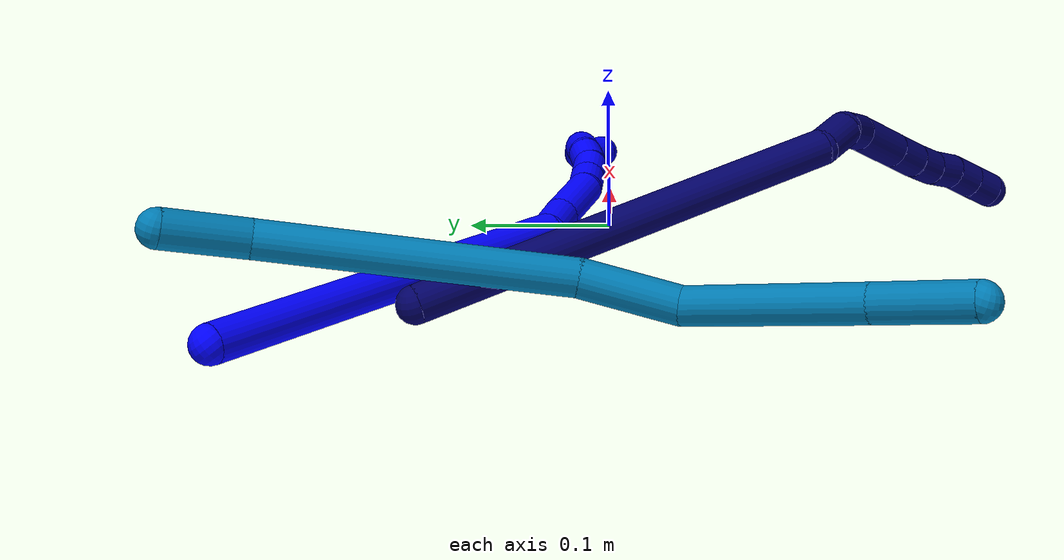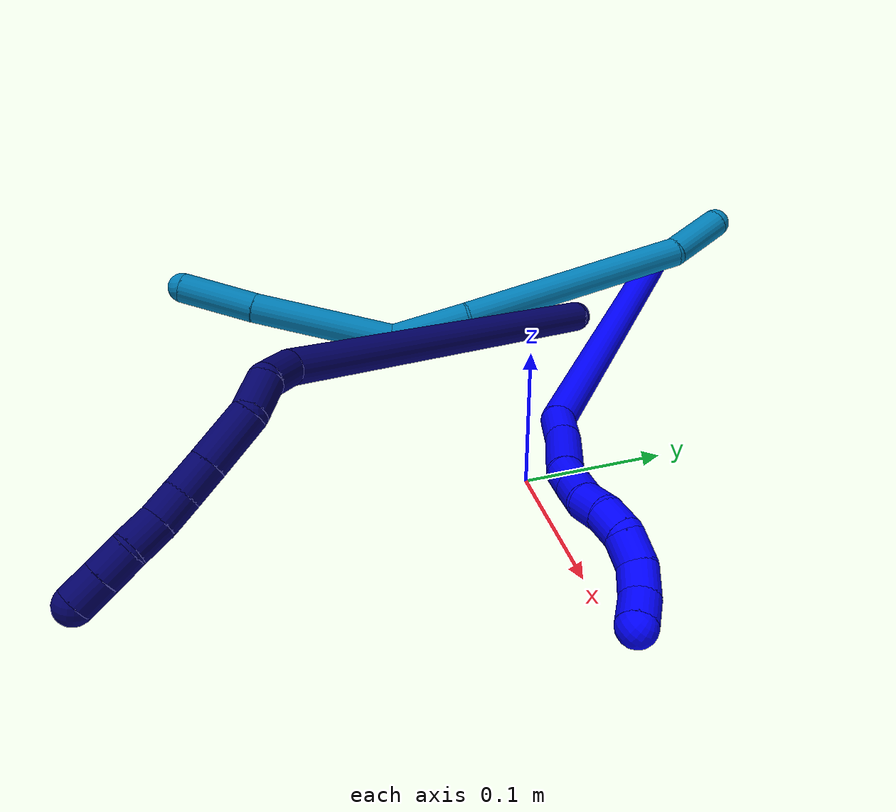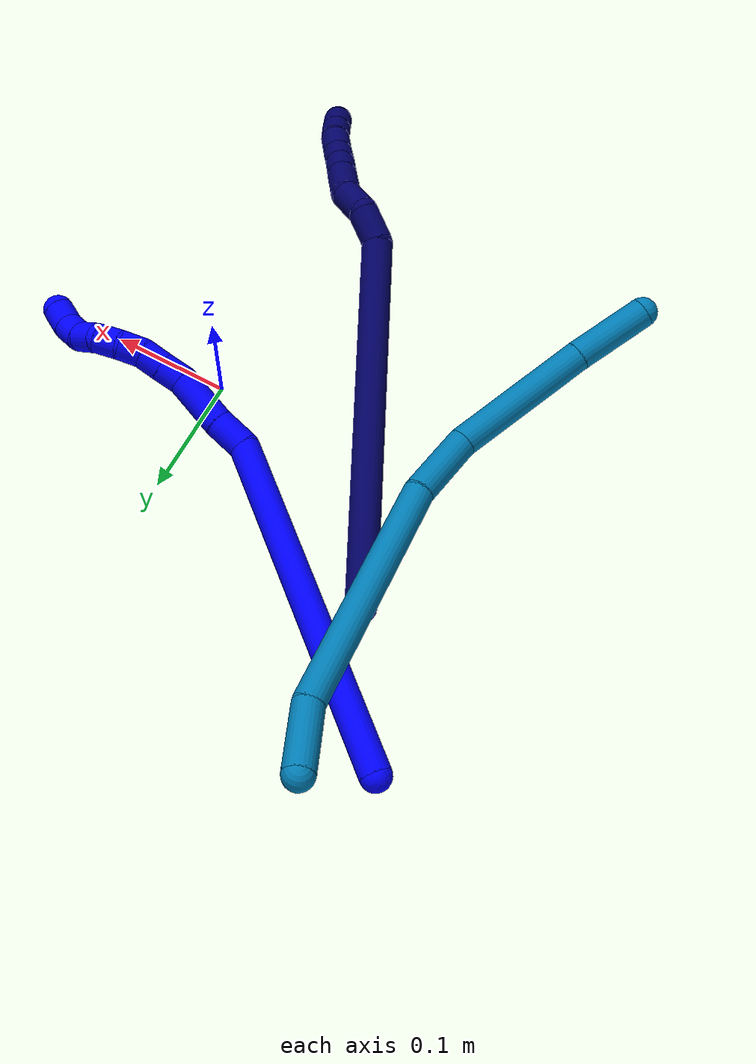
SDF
<sdf version="1.7">
 <world name="default">
  <model name="1">
   <static>0</static>
   <link name="1">
    <collision name="collision-cylinder-e_1_1_4">
     <pose>0.107219 -0.080087 -0.046219 2.09421 0.85914 1.34126</pose>
     <geometry><cylinder><radius>0.0125</radius><length>0.283168</length></cylinder></geometry>
     <surface>
      <friction><ode><mu>1.16</mu><mu2>1.16</mu2><slip1>0</slip1><slip2>0</slip2></ode></friction>
      <contact><ode><kp>1e+06</kp><kd>1</kd><max_vel>0</max_vel><min_depth>0.001</min_depth></ode></contact>
     </surface>
    </collision>
    <visual name="visual-cylinder-e_1_1_4">
     <pose>0.107219 -0.080087 -0.046219 2.09421 0.85914 1.34126</pose>
     <geometry><cylinder><radius>0.0125</radius><length>0.283168</length></cylinder></geometry>
     <material><ambient>0 0 1 1</ambient></material>
    </visual>
    <collision name="collision-cylinder-e_2_4_5">
     <pose>0.228446 -0.164963 -0.092444 1.57216 1.24144 1.24273</pose>
     <geometry><cylinder><radius>0.0125</radius><length>0.029607</length></cylinder></geometry>
     <surface>
      <friction><ode><mu>1.16</mu><mu2>1.16</mu2><slip1>0</slip1><slip2>0</slip2></ode></friction>
      <contact><ode><kp>1e+06</kp><kd>1</kd><max_vel>0</max_vel><min_depth>0.001</min_depth></ode></contact>
     </surface>
    </collision>
    <visual name="visual-cylinder-e_2_4_5">
     <pose>0.228446 -0.164963 -0.092444 1.57216 1.24144 1.24273</pose>
     <geometry><cylinder><radius>0.0125</radius><length>0.029607</length></cylinder></geometry>
     <material><ambient>0 0 1 1</ambient></material>
    </visual>
    <collision name="collision-cylinder-e_3_5_6">
     <pose>0.263669 -0.179963 -0.092719 1.59712 1.12204 1.14589</pose>
     <geometry><cylinder><radius>0.0125</radius><length>0.047092</length></cylinder></geometry>
     <surface>
      <friction><ode><mu>1.16</mu><mu2>1.16</mu2><slip1>0</slip1><slip2>0</slip2></ode></friction>
      <contact><ode><kp>1e+06</kp><kd>1</kd><max_vel>0</max_vel><min_depth>0.001</min_depth></ode></contact>
     </surface>
    </collision>
    <visual name="visual-cylinder-e_3_5_6">
     <pose>0.263669 -0.179963 -0.092719 1.59712 1.12204 1.14589</pose>
     <geometry><cylinder><radius>0.0125</radius><length>0.047092</length></cylinder></geometry>
     <material><ambient>0 0 1 1</ambient></material>
    </visual>
    <collision name="collision-cylinder-e_4_6_7">
     <pose>0.294527 -0.19232 -0.091417 0.938752 1.30176 0.73722</pose>
     <geometry><cylinder><radius>0.0125</radius><length>0.020007</length></cylinder></geometry>
     <surface>
      <friction><ode><mu>1.16</mu><mu2>1.16</mu2><slip1>0</slip1><slip2>0</slip2></ode></friction>
      <contact><ode><kp>1e+06</kp><kd>1</kd><max_vel>0</max_vel><min_depth>0.001</min_depth></ode></contact>
     </surface>
    </collision>
    <visual name="visual-cylinder-e_4_6_7">
     <pose>0.294527 -0.19232 -0.091417 0.938752 1.30176 0.73722</pose>
     <geometry><cylinder><radius>0.0125</radius><length>0.020007</length></cylinder></geometry>
     <material><ambient>0 0 1 1</ambient></material>
    </visual>
    <collision name="collision-cylinder-e_5_7_8">
     <pose>0.313633 -0.197028 -0.087871 0.914163 1.24128 0.676179</pose>
     <geometry><cylinder><radius>0.0125</radius><length>0.020001</length></cylinder></geometry>
     <surface>
      <friction><ode><mu>1.16</mu><mu2>1.16</mu2><slip1>0</slip1><slip2>0</slip2></ode></friction>
      <contact><ode><kp>1e+06</kp><kd>1</kd><max_vel>0</max_vel><min_depth>0.001</min_depth></ode></contact>
     </surface>
    </collision>
    <visual name="visual-cylinder-e_5_7_8">
     <pose>0.313633 -0.197028 -0.087871 0.914163 1.24128 0.676179</pose>
     <geometry><cylinder><radius>0.0125</radius><length>0.020001</length></cylinder></geometry>
     <material><ambient>0 0 1 1</ambient></material>
    </visual>
    <collision name="collision-cylinder-e_6_8_9">
     <pose>0.332441 -0.19974 -0.082295 0.041125 1.20285 0.028223</pose>
     <geometry><cylinder><radius>0.0125</radius><length>0.020032</length></cylinder></geometry>
     <surface>
      <friction><ode><mu>1.16</mu><mu2>1.16</mu2><slip1>0</slip1><slip2>0</slip2></ode></friction>
      <contact><ode><kp>1e+06</kp><kd>1</kd><max_vel>0</max_vel><min_depth>0.001</min_depth></ode></contact>
     </surface>
    </collision>
    <visual name="visual-cylinder-e_6_8_9">
     <pose>0.332441 -0.19974 -0.082295 0.041125 1.20285 0.028223</pose>
     <geometry><cylinder><radius>0.0125</radius><length>0.020032</length></cylinder></geometry>
     <material><ambient>0 0 1 1</ambient></material>
    </visual>
    <collision name="collision-cylinder-e_7_9_10">
     <pose>0.351657 -0.199082 -0.077279 -0.517082 1.40718 -0.441449</pose>
     <geometry><cylinder><radius>0.0125</radius><length>0.020006</length></cylinder></geometry>
     <surface>
      <friction><ode><mu>1.16</mu><mu2>1.16</mu2><slip1>0</slip1><slip2>0</slip2></ode></friction>
      <contact><ode><kp>1e+06</kp><kd>1</kd><max_vel>0</max_vel><min_depth>0.001</min_depth></ode></contact>
     </surface>
    </collision>
    <visual name="visual-cylinder-e_7_9_10">
     <pose>0.351657 -0.199082 -0.077279 -0.517082 1.40718 -0.441449</pose>
     <geometry><cylinder><radius>0.0125</radius><length>0.020006</length></cylinder></geometry>
     <material><ambient>0 0 1 1</ambient></material>
    </visual>
    <collision name="collision-cylinder-e_8_10_11">
     <pose>0.370722 -0.195484 -0.078632 -2.35196 1.16668 -2.01521</pose>
     <geometry><cylinder><radius>0.0125</radius><length>0.020003</length></cylinder></geometry>
     <surface>
      <friction><ode><mu>1.16</mu><mu2>1.16</mu2><slip1>0</slip1><slip2>0</slip2></ode></friction>
      <contact><ode><kp>1e+06</kp><kd>1</kd><max_vel>0</max_vel><min_depth>0.001</min_depth></ode></contact>
     </surface>
    </collision>
    <visual name="visual-cylinder-e_8_10_11">
     <pose>0.370722 -0.195484 -0.078632 -2.35196 1.16668 -2.01521</pose>
     <geometry><cylinder><radius>0.0125</radius><length>0.020003</length></cylinder></geometry>
     <material><ambient>0 0 1 1</ambient></material>
    </visual>
    <collision name="collision-cylinder-e_9_11_12">
     <pose>0.389088 -0.193902 -0.085246 2.83671 1.15661 2.67929</pose>
     <geometry><cylinder><radius>0.0125</radius><length>0.020034</length></cylinder></geometry>
     <surface>
      <friction><ode><mu>1.16</mu><mu2>1.16</mu2><slip1>0</slip1><slip2>0</slip2></ode></friction>
      <contact><ode><kp>1e+06</kp><kd>1</kd><max_vel>0</max_vel><min_depth>0.001</min_depth></ode></contact>
     </surface>
    </collision>
    <visual name="visual-cylinder-e_9_11_12">
     <pose>0.389088 -0.193902 -0.085246 2.83671 1.15661 2.67929</pose>
     <geometry><cylinder><radius>0.0125</radius><length>0.020034</length></cylinder></geometry>
     <material><ambient>0 0 1 1</ambient></material>
    </visual>
    <collision name="collision-cylinder-e_10_12_2">
     <pose>0.406866 -0.199441 -0.091856 2.13908 1.03283 1.60642</pose>
     <geometry><cylinder><radius>0.0125</radius><length>0.020048</length></cylinder></geometry>
     <surface>
      <friction><ode><mu>1.16</mu><mu2>1.16</mu2><slip1>0</slip1><slip2>0</slip2></ode></friction>
      <contact><ode><kp>1e+06</kp><kd>1</kd><max_vel>0</max_vel><min_depth>0.001</min_depth></ode></contact>
     </surface>
    </collision>
    <visual name="visual-cylinder-e_10_12_2">
     <pose>0.406866 -0.199441 -0.091856 2.13908 1.03283 1.60642</pose>
     <geometry><cylinder><radius>0.0125</radius><length>0.020048</length></cylinder></geometry>
     <material><ambient>0 0 1 1</ambient></material>
    </visual>
    <collision name="collision-sphere-2">
     <pose>0.415475 -0.20377 -0.09462 0 -0 0</pose>
     <geometry><sphere><radius>0.0125</radius></sphere></geometry>
     <surface>
      <friction><ode><mu>1.16</mu><mu2>1.16</mu2><slip1>0</slip1><slip2>0</slip2></ode></friction>
      <contact><ode><kp>1e+06</kp><kd>1</kd><max_vel>0</max_vel><min_depth>0.001</min_depth></ode></contact>
     </surface>
    </collision>
    <visual name="visual-sphere-2">
     <pose>0.415475 -0.20377 -0.09462 0 -0 0</pose>
     <geometry><sphere><radius>0.0125</radius></sphere></geometry>
     <material><ambient>0 0 1 1</ambient></material>
    </visual>
    <collision name="collision-sphere-12">
     <pose>0.398258 -0.195112 -0.089092 0 -0 0</pose>
     <geometry><sphere><radius>0.0125</radius></sphere></geometry>
     <surface>
      <friction><ode><mu>1.16</mu><mu2>1.16</mu2><slip1>0</slip1><slip2>0</slip2></ode></friction>
      <contact><ode><kp>1e+06</kp><kd>1</kd><max_vel>0</max_vel><min_depth>0.001</min_depth></ode></contact>
     </surface>
    </collision>
    <visual name="visual-sphere-12">
     <pose>0.398258 -0.195112 -0.089092 0 -0 0</pose>
     <geometry><sphere><radius>0.0125</radius></sphere></geometry>
     <material><ambient>0 0 1 1</ambient></material>
    </visual>
    <collision name="collision-sphere-11">
     <pose>0.379918 -0.192692 -0.081401 0 -0 0</pose>
     <geometry><sphere><radius>0.0125</radius></sphere></geometry>
     <surface>
      <friction><ode><mu>1.16</mu><mu2>1.16</mu2><slip1>0</slip1><slip2>0</slip2></ode></friction>
      <contact><ode><kp>1e+06</kp><kd>1</kd><max_vel>0</max_vel><min_depth>0.001</min_depth></ode></contact>
     </surface>
    </collision>
    <visual name="visual-sphere-11">
     <pose>0.379918 -0.192692 -0.081401 0 -0 0</pose>
     <geometry><sphere><radius>0.0125</radius></sphere></geometry>
     <material><ambient>0 0 1 1</ambient></material>
    </visual>
    <collision name="collision-sphere-10">
     <pose>0.361526 -0.198277 -0.075863 0 -0 0</pose>
     <geometry><sphere><radius>0.0125</radius></sphere></geometry>
     <surface>
      <friction><ode><mu>1.16</mu><mu2>1.16</mu2><slip1>0</slip1><slip2>0</slip2></ode></friction>
      <contact><ode><kp>1e+06</kp><kd>1</kd><max_vel>0</max_vel><min_depth>0.001</min_depth></ode></contact>
     </surface>
    </collision>
    <visual name="visual-sphere-10">
     <pose>0.361526 -0.198277 -0.075863 0 -0 0</pose>
     <geometry><sphere><radius>0.0125</radius></sphere></geometry>
     <material><ambient>0 0 1 1</ambient></material>
    </visual>
    <collision name="collision-sphere-9">
     <pose>0.341787 -0.199888 -0.078696 0 -0 0</pose>
     <geometry><sphere><radius>0.0125</radius></sphere></geometry>
     <surface>
      <friction><ode><mu>1.16</mu><mu2>1.16</mu2><slip1>0</slip1><slip2>0</slip2></ode></friction>
      <contact><ode><kp>1e+06</kp><kd>1</kd><max_vel>0</max_vel><min_depth>0.001</min_depth></ode></contact>
     </surface>
    </collision>
    <visual name="visual-sphere-9">
     <pose>0.341787 -0.199888 -0.078696 0 -0 0</pose>
     <geometry><sphere><radius>0.0125</radius></sphere></geometry>
     <material><ambient>0 0 1 1</ambient></material>
    </visual>
    <collision name="collision-sphere-4">
     <pose>0.214438 -0.160175 -0.092437 0 -0 0</pose>
     <geometry><sphere><radius>0.0125</radius></sphere></geometry>
     <surface>
      <friction><ode><mu>1.16</mu><mu2>1.16</mu2><slip1>0</slip1><slip2>0</slip2></ode></friction>
      <contact><ode><kp>1e+06</kp><kd>1</kd><max_vel>0</max_vel><min_depth>0.001</min_depth></ode></contact>
     </surface>
    </collision>
    <visual name="visual-sphere-4">
     <pose>0.214438 -0.160175 -0.092437 0 -0 0</pose>
     <geometry><sphere><radius>0.0125</radius></sphere></geometry>
     <material><ambient>0 0 1 1</ambient></material>
    </visual>
    <collision name="collision-sphere-1">
     <geometry><sphere><radius>0.0125</radius></sphere></geometry>
     <surface>
      <friction><ode><mu>1.16</mu><mu2>1.16</mu2><slip1>0</slip1><slip2>0</slip2></ode></friction>
      <contact><ode><kp>1e+06</kp><kd>1</kd><max_vel>0</max_vel><min_depth>0.001</min_depth></ode></contact>
     </surface>
    </collision>
    <visual name="visual-sphere-1">
     <geometry><sphere><radius>0.0125</radius></sphere></geometry>
     <material><ambient>0 0 1 1</ambient></material>
    </visual>
    <collision name="collision-sphere-8">
     <pose>0.323096 -0.199591 -0.085895 0 -0 0</pose>
     <geometry><sphere><radius>0.0125</radius></sphere></geometry>
     <surface>
      <friction><ode><mu>1.16</mu><mu2>1.16</mu2><slip1>0</slip1><slip2>0</slip2></ode></friction>
      <contact><ode><kp>1e+06</kp><kd>1</kd><max_vel>0</max_vel><min_depth>0.001</min_depth></ode></contact>
     </surface>
    </collision>
    <visual name="visual-sphere-8">
     <pose>0.323096 -0.199591 -0.085895 0 -0 0</pose>
     <geometry><sphere><radius>0.0125</radius></sphere></geometry>
     <material><ambient>0 0 1 1</ambient></material>
    </visual>
    <collision name="collision-sphere-5">
     <pose>0.242454 -0.169751 -0.09245 0 -0 0</pose>
     <geometry><sphere><radius>0.0125</radius></sphere></geometry>
     <surface>
      <friction><ode><mu>1.16</mu><mu2>1.16</mu2><slip1>0</slip1><slip2>0</slip2></ode></friction>
      <contact><ode><kp>1e+06</kp><kd>1</kd><max_vel>0</max_vel><min_depth>0.001</min_depth></ode></contact>
     </surface>
    </collision>
    <visual name="visual-sphere-5">
     <pose>0.242454 -0.169751 -0.09245 0 -0 0</pose>
     <geometry><sphere><radius>0.0125</radius></sphere></geometry>
     <material><ambient>0 0 1 1</ambient></material>
    </visual>
    <collision name="collision-sphere-6">
     <pose>0.284884 -0.190175 -0.092988 0 -0 0</pose>
     <geometry><sphere><radius>0.0125</radius></sphere></geometry>
     <surface>
      <friction><ode><mu>1.16</mu><mu2>1.16</mu2><slip1>0</slip1><slip2>0</slip2></ode></friction>
      <contact><ode><kp>1e+06</kp><kd>1</kd><max_vel>0</max_vel><min_depth>0.001</min_depth></ode></contact>
     </surface>
    </collision>
    <visual name="visual-sphere-6">
     <pose>0.284884 -0.190175 -0.092988 0 -0 0</pose>
     <geometry><sphere><radius>0.0125</radius></sphere></geometry>
     <material><ambient>0 0 1 1</ambient></material>
    </visual>
    <collision name="collision-sphere-7">
     <pose>0.304171 -0.194465 -0.089846 0 -0 0</pose>
     <geometry><sphere><radius>0.0125</radius></sphere></geometry>
     <surface>
      <friction><ode><mu>1.16</mu><mu2>1.16</mu2><slip1>0</slip1><slip2>0</slip2></ode></friction>
      <contact><ode><kp>1e+06</kp><kd>1</kd><max_vel>0</max_vel><min_depth>0.001</min_depth></ode></contact>
     </surface>
    </collision>
    <visual name="visual-sphere-7">
     <pose>0.304171 -0.194465 -0.089846 0 -0 0</pose>
     <geometry><sphere><radius>0.0125</radius></sphere></geometry>
     <material><ambient>0 0 1 1</ambient></material>
    </visual>
    <inertial>
     <pose>0.197539 -0.127206 -0.064189 0 -0 0</pose>
     <mass>0.5</mass>
     <inertia>
      <ixx>0.001535</ixx>
      <ixy>0</ixy>
      <ixz>0</ixz>
      <iyy>0.002221</iyy>
      <iyz>0</iyz>
      <izz>-0.000388</izz>
     </inertia>
    </inertial>
   </link>
   <pose>-0.263751 0.223493 0.014014 -0.632983 0.105794 0.008427</pose>
  </model>
  <model name="7">
   <static>0</static>
   <link name="7">
    <collision name="collision-cylinder-e_1_1_4">
     <pose>0.014697 -0.147044 -0.01367 1.6635 0.099196 0.108828</pose>
     <geometry><cylinder><radius>0.0125</radius><length>0.296815</length></cylinder></geometry>
     <surface>
      <friction><ode><mu>1.16</mu><mu2>1.16</mu2><slip1>0</slip1><slip2>0</slip2></ode></friction>
      <contact><ode><kp>1e+06</kp><kd>1</kd><max_vel>0</max_vel><min_depth>0.001</min_depth></ode></contact>
     </surface>
    </collision>
    <visual name="visual-cylinder-e_1_1_4">
     <pose>0.014697 -0.147044 -0.01367 1.6635 0.099196 0.108828</pose>
     <geometry><cylinder><radius>0.0125</radius><length>0.296815</length></cylinder></geometry>
     <material><ambient>0.003922 0 0.403922 1</ambient></material>
    </visual>
    <collision name="collision-cylinder-e_2_4_5">
     <pose>0.03722 -0.306622 -0.02871 1.67961 0.555452 0.615654</pose>
     <geometry><cylinder><radius>0.0125</radius><length>0.02968</length></cylinder></geometry>
     <surface>
      <friction><ode><mu>1.16</mu><mu2>1.16</mu2><slip1>0</slip1><slip2>0</slip2></ode></friction>
      <contact><ode><kp>1e+06</kp><kd>1</kd><max_vel>0</max_vel><min_depth>0.001</min_depth></ode></contact>
     </surface>
    </collision>
    <visual name="visual-cylinder-e_2_4_5">
     <pose>0.03722 -0.306622 -0.02871 1.67961 0.555452 0.615654</pose>
     <geometry><cylinder><radius>0.0125</radius><length>0.02968</length></cylinder></geometry>
     <material><ambient>0.003922 0 0.403922 1</ambient></material>
    </visual>
    <collision name="collision-cylinder-e_3_5_6">
     <pose>0.052893 -0.327755 -0.03783 2.30433 0.59574 1.20797</pose>
     <geometry><cylinder><radius>0.0125</radius><length>0.027971</length></cylinder></geometry>
     <surface>
      <friction><ode><mu>1.16</mu><mu2>1.16</mu2><slip1>0</slip1><slip2>0</slip2></ode></friction>
      <contact><ode><kp>1e+06</kp><kd>1</kd><max_vel>0</max_vel><min_depth>0.001</min_depth></ode></contact>
     </surface>
    </collision>
    <visual name="visual-cylinder-e_3_5_6">
     <pose>0.052893 -0.327755 -0.03783 2.30433 0.59574 1.20797</pose>
     <geometry><cylinder><radius>0.0125</radius><length>0.027971</length></cylinder></geometry>
     <material><ambient>0.003922 0 0.403922 1</ambient></material>
    </visual>
    <collision name="collision-cylinder-e_4_6_7">
     <pose>0.063714 -0.349585 -0.059577 2.38434 0.153142 0.381028</pose>
     <geometry><cylinder><radius>0.0125</radius><length>0.038977</length></cylinder></geometry>
     <surface>
      <friction><ode><mu>1.16</mu><mu2>1.16</mu2><slip1>0</slip1><slip2>0</slip2></ode></friction>
      <contact><ode><kp>1e+06</kp><kd>1</kd><max_vel>0</max_vel><min_depth>0.001</min_depth></ode></contact>
     </surface>
    </collision>
    <visual name="visual-cylinder-e_4_6_7">
     <pose>0.063714 -0.349585 -0.059577 2.38434 0.153142 0.381028</pose>
     <geometry><cylinder><radius>0.0125</radius><length>0.038977</length></cylinder></geometry>
     <material><ambient>0.003922 0 0.403922 1</ambient></material>
    </visual>
    <collision name="collision-cylinder-e_5_7_8">
     <pose>0.068304 -0.370743 -0.08185 2.37771 0.140179 0.346071</pose>
     <geometry><cylinder><radius>0.0125</radius><length>0.023148</length></cylinder></geometry>
     <surface>
      <friction><ode><mu>1.16</mu><mu2>1.16</mu2><slip1>0</slip1><slip2>0</slip2></ode></friction>
      <contact><ode><kp>1e+06</kp><kd>1</kd><max_vel>0</max_vel><min_depth>0.001</min_depth></ode></contact>
     </surface>
    </collision>
    <visual name="visual-cylinder-e_5_7_8">
     <pose>0.068304 -0.370743 -0.08185 2.37771 0.140179 0.346071</pose>
     <geometry><cylinder><radius>0.0125</radius><length>0.023148</length></cylinder></geometry>
     <material><ambient>0.003922 0 0.403922 1</ambient></material>
    </visual>
    <collision name="collision-cylinder-e_6_8_9">
     <pose>0.071828 -0.385916 -0.097083 2.33581 0.187676 0.434664</pose>
     <geometry><cylinder><radius>0.0125</radius><length>0.020448</length></cylinder></geometry>
     <surface>
      <friction><ode><mu>1.16</mu><mu2>1.16</mu2><slip1>0</slip1><slip2>0</slip2></ode></friction>
      <contact><ode><kp>1e+06</kp><kd>1</kd><max_vel>0</max_vel><min_depth>0.001</min_depth></ode></contact>
     </surface>
    </collision>
    <visual name="visual-cylinder-e_6_8_9">
     <pose>0.071828 -0.385916 -0.097083 2.33581 0.187676 0.434664</pose>
     <geometry><cylinder><radius>0.0125</radius><length>0.020448</length></cylinder></geometry>
     <material><ambient>0.003922 0 0.403922 1</ambient></material>
    </visual>
    <collision name="collision-cylinder-e_7_9_10">
     <pose>0.075947 -0.401908 -0.110292 2.19144 0.202812 0.390606</pose>
     <geometry><cylinder><radius>0.0125</radius><length>0.021954</length></cylinder></geometry>
     <surface>
      <friction><ode><mu>1.16</mu><mu2>1.16</mu2><slip1>0</slip1><slip2>0</slip2></ode></friction>
      <contact><ode><kp>1e+06</kp><kd>1</kd><max_vel>0</max_vel><min_depth>0.001</min_depth></ode></contact>
     </surface>
    </collision>
    <visual name="visual-cylinder-e_7_9_10">
     <pose>0.075947 -0.401908 -0.110292 2.19144 0.202812 0.390606</pose>
     <geometry><cylinder><radius>0.0125</radius><length>0.021954</length></cylinder></geometry>
     <material><ambient>0.003922 0 0.403922 1</ambient></material>
    </visual>
    <collision name="collision-cylinder-e_8_10_11">
     <pose>0.078433 -0.417925 -0.123971 2.36685 0.026502 0.06494</pose>
     <geometry><cylinder><radius>0.0125</radius><length>0.020792</length></cylinder></geometry>
     <surface>
      <friction><ode><mu>1.16</mu><mu2>1.16</mu2><slip1>0</slip1><slip2>0</slip2></ode></friction>
      <contact><ode><kp>1e+06</kp><kd>1</kd><max_vel>0</max_vel><min_depth>0.001</min_depth></ode></contact>
     </surface>
    </collision>
    <visual name="visual-cylinder-e_8_10_11">
     <pose>0.078433 -0.417925 -0.123971 2.36685 0.026502 0.06494</pose>
     <geometry><cylinder><radius>0.0125</radius><length>0.020792</length></cylinder></geometry>
     <material><ambient>0.003922 0 0.403922 1</ambient></material>
    </visual>
    <collision name="collision-cylinder-e_9_11_2">
     <pose>0.078744 -0.432267 -0.138619 2.3666 0.003478 0.008521</pose>
     <geometry><cylinder><radius>0.0125</radius><length>0.020216</length></cylinder></geometry>
     <surface>
      <friction><ode><mu>1.16</mu><mu2>1.16</mu2><slip1>0</slip1><slip2>0</slip2></ode></friction>
      <contact><ode><kp>1e+06</kp><kd>1</kd><max_vel>0</max_vel><min_depth>0.001</min_depth></ode></contact>
     </surface>
    </collision>
    <visual name="visual-cylinder-e_9_11_2">
     <pose>0.078744 -0.432267 -0.138619 2.3666 0.003478 0.008521</pose>
     <geometry><cylinder><radius>0.0125</radius><length>0.020216</length></cylinder></geometry>
     <material><ambient>0.003922 0 0.403922 1</ambient></material>
    </visual>
    <collision name="collision-sphere-2">
     <pose>0.078779 -0.43934 -0.14584 0 -0 0</pose>
     <geometry><sphere><radius>0.0125</radius></sphere></geometry>
     <surface>
      <friction><ode><mu>1.16</mu><mu2>1.16</mu2><slip1>0</slip1><slip2>0</slip2></ode></friction>
      <contact><ode><kp>1e+06</kp><kd>1</kd><max_vel>0</max_vel><min_depth>0.001</min_depth></ode></contact>
     </surface>
    </collision>
    <visual name="visual-sphere-2">
     <pose>0.078779 -0.43934 -0.14584 0 -0 0</pose>
     <geometry><sphere><radius>0.0125</radius></sphere></geometry>
     <material><ambient>0.003922 0 0.403922 1</ambient></material>
    </visual>
    <collision name="collision-sphere-11">
     <pose>0.078709 -0.425194 -0.131397 0 -0 0</pose>
     <geometry><sphere><radius>0.0125</radius></sphere></geometry>
     <surface>
      <friction><ode><mu>1.16</mu><mu2>1.16</mu2><slip1>0</slip1><slip2>0</slip2></ode></friction>
      <contact><ode><kp>1e+06</kp><kd>1</kd><max_vel>0</max_vel><min_depth>0.001</min_depth></ode></contact>
     </surface>
    </collision>
    <visual name="visual-sphere-11">
     <pose>0.078709 -0.425194 -0.131397 0 -0 0</pose>
     <geometry><sphere><radius>0.0125</radius></sphere></geometry>
     <material><ambient>0.003922 0 0.403922 1</ambient></material>
    </visual>
    <collision name="collision-sphere-10">
     <pose>0.078158 -0.410655 -0.116545 0 -0 0</pose>
     <geometry><sphere><radius>0.0125</radius></sphere></geometry>
     <surface>
      <friction><ode><mu>1.16</mu><mu2>1.16</mu2><slip1>0</slip1><slip2>0</slip2></ode></friction>
      <contact><ode><kp>1e+06</kp><kd>1</kd><max_vel>0</max_vel><min_depth>0.001</min_depth></ode></contact>
     </surface>
    </collision>
    <visual name="visual-sphere-10">
     <pose>0.078158 -0.410655 -0.116545 0 -0 0</pose>
     <geometry><sphere><radius>0.0125</radius></sphere></geometry>
     <material><ambient>0.003922 0 0.403922 1</ambient></material>
    </visual>
    <collision name="collision-sphere-9">
     <pose>0.073736 -0.393161 -0.104039 0 -0 0</pose>
     <geometry><sphere><radius>0.0125</radius></sphere></geometry>
     <surface>
      <friction><ode><mu>1.16</mu><mu2>1.16</mu2><slip1>0</slip1><slip2>0</slip2></ode></friction>
      <contact><ode><kp>1e+06</kp><kd>1</kd><max_vel>0</max_vel><min_depth>0.001</min_depth></ode></contact>
     </surface>
    </collision>
    <visual name="visual-sphere-9">
     <pose>0.073736 -0.393161 -0.104039 0 -0 0</pose>
     <geometry><sphere><radius>0.0125</radius></sphere></geometry>
     <material><ambient>0.003922 0 0.403922 1</ambient></material>
    </visual>
    <collision name="collision-sphere-4">
     <pose>0.029395 -0.294087 -0.027341 0 -0 0</pose>
     <geometry><sphere><radius>0.0125</radius></sphere></geometry>
     <surface>
      <friction><ode><mu>1.16</mu><mu2>1.16</mu2><slip1>0</slip1><slip2>0</slip2></ode></friction>
      <contact><ode><kp>1e+06</kp><kd>1</kd><max_vel>0</max_vel><min_depth>0.001</min_depth></ode></contact>
     </surface>
    </collision>
    <visual name="visual-sphere-4">
     <pose>0.029395 -0.294087 -0.027341 0 -0 0</pose>
     <geometry><sphere><radius>0.0125</radius></sphere></geometry>
     <material><ambient>0.003922 0 0.403922 1</ambient></material>
    </visual>
    <collision name="collision-sphere-1">
     <geometry><sphere><radius>0.0125</radius></sphere></geometry>
     <surface>
      <friction><ode><mu>1.16</mu><mu2>1.16</mu2><slip1>0</slip1><slip2>0</slip2></ode></friction>
      <contact><ode><kp>1e+06</kp><kd>1</kd><max_vel>0</max_vel><min_depth>0.001</min_depth></ode></contact>
     </surface>
    </collision>
    <visual name="visual-sphere-1">
     <geometry><sphere><radius>0.0125</radius></sphere></geometry>
     <material><ambient>0.003922 0 0.403922 1</ambient></material>
    </visual>
    <collision name="collision-sphere-8">
     <pose>0.069921 -0.37867 -0.090127 0 -0 0</pose>
     <geometry><sphere><radius>0.0125</radius></sphere></geometry>
     <surface>
      <friction><ode><mu>1.16</mu><mu2>1.16</mu2><slip1>0</slip1><slip2>0</slip2></ode></friction>
      <contact><ode><kp>1e+06</kp><kd>1</kd><max_vel>0</max_vel><min_depth>0.001</min_depth></ode></contact>
     </surface>
    </collision>
    <visual name="visual-sphere-8">
     <pose>0.069921 -0.37867 -0.090127 0 -0 0</pose>
     <geometry><sphere><radius>0.0125</radius></sphere></geometry>
     <material><ambient>0.003922 0 0.403922 1</ambient></material>
    </visual>
    <collision name="collision-sphere-5">
     <pose>0.045046 -0.319156 -0.030079 0 -0 0</pose>
     <geometry><sphere><radius>0.0125</radius></sphere></geometry>
     <surface>
      <friction><ode><mu>1.16</mu><mu2>1.16</mu2><slip1>0</slip1><slip2>0</slip2></ode></friction>
      <contact><ode><kp>1e+06</kp><kd>1</kd><max_vel>0</max_vel><min_depth>0.001</min_depth></ode></contact>
     </surface>
    </collision>
    <visual name="visual-sphere-5">
     <pose>0.045046 -0.319156 -0.030079 0 -0 0</pose>
     <geometry><sphere><radius>0.0125</radius></sphere></geometry>
     <material><ambient>0.003922 0 0.403922 1</ambient></material>
    </visual>
    <collision name="collision-sphere-6">
     <pose>0.060741 -0.336354 -0.04558 0 -0 0</pose>
     <geometry><sphere><radius>0.0125</radius></sphere></geometry>
     <surface>
      <friction><ode><mu>1.16</mu><mu2>1.16</mu2><slip1>0</slip1><slip2>0</slip2></ode></friction>
      <contact><ode><kp>1e+06</kp><kd>1</kd><max_vel>0</max_vel><min_depth>0.001</min_depth></ode></contact>
     </surface>
    </collision>
    <visual name="visual-sphere-6">
     <pose>0.060741 -0.336354 -0.04558 0 -0 0</pose>
     <geometry><sphere><radius>0.0125</radius></sphere></geometry>
     <material><ambient>0.003922 0 0.403922 1</ambient></material>
    </visual>
    <collision name="collision-sphere-7">
     <pose>0.066687 -0.362815 -0.073574 0 -0 0</pose>
     <geometry><sphere><radius>0.0125</radius></sphere></geometry>
     <surface>
      <friction><ode><mu>1.16</mu><mu2>1.16</mu2><slip1>0</slip1><slip2>0</slip2></ode></friction>
      <contact><ode><kp>1e+06</kp><kd>1</kd><max_vel>0</max_vel><min_depth>0.001</min_depth></ode></contact>
     </surface>
    </collision>
    <visual name="visual-sphere-7">
     <pose>0.066687 -0.362815 -0.073574 0 -0 0</pose>
     <geometry><sphere><radius>0.0125</radius></sphere></geometry>
     <material><ambient>0.003922 0 0.403922 1</ambient></material>
    </visual>
    <inertial>
     <pose>0.034739 -0.236527 -0.039942 0 -0 0</pose>
     <mass>0.5</mass>
     <inertia>
      <ixx>0.002435</ixx>
      <ixy>0</ixy>
      <ixz>0</ixz>
      <iyy>2.5e-05</iyy>
      <iyz>0</iyz>
      <izz>0.001952</izz>
     </inertia>
    </inertial>
   </link>
   <pose>-0.193674 0.11621 0.011499 -0.30644 -0.094788 0.371686</pose>
  </model>
  <model name="9">
   <static>0</static>
   <link name="9">
    <collision name="collision-cylinder-e_1_1_4">
     <pose>-0.01749 -0.021014 -0.001511 1.64259 -0.69287 -0.740042</pose>
     <geometry><cylinder><radius>0.0125</radius><length>0.054764</length></cylinder></geometry>
     <surface>
      <friction><ode><mu>1.16</mu><mu2>1.16</mu2><slip1>0</slip1><slip2>0</slip2></ode></friction>
      <contact><ode><kp>1e+06</kp><kd>1</kd><max_vel>0</max_vel><min_depth>0.001</min_depth></ode></contact>
     </surface>
    </collision>
    <visual name="visual-cylinder-e_1_1_4">
     <pose>-0.01749 -0.021014 -0.001511 1.64259 -0.69287 -0.740042</pose>
     <geometry><cylinder><radius>0.0125</radius><length>0.054764</length></cylinder></geometry>
     <material><ambient>0 0.490196 0.709804 1</ambient></material>
    </visual>
    <collision name="collision-cylinder-e_2_4_5">
     <pose>-0.070177 -0.132447 -0.018134 1.7364 -0.36658 -0.431046</pose>
     <geometry><cylinder><radius>0.0125</radius><length>0.196395</length></cylinder></geometry>
     <surface>
      <friction><ode><mu>1.16</mu><mu2>1.16</mu2><slip1>0</slip1><slip2>0</slip2></ode></friction>
      <contact><ode><kp>1e+06</kp><kd>1</kd><max_vel>0</max_vel><min_depth>0.001</min_depth></ode></contact>
     </surface>
    </collision>
    <visual name="visual-cylinder-e_2_4_5">
     <pose>-0.070177 -0.132447 -0.018134 1.7364 -0.36658 -0.431046</pose>
     <geometry><cylinder><radius>0.0125</radius><length>0.196395</length></cylinder></geometry>
     <material><ambient>0 0.490196 0.709804 1</ambient></material>
    </visual>
    <collision name="collision-cylinder-e_3_5_6">
     <pose>-0.111548 -0.254683 -0.034946 1.62417 -0.191424 -0.201855</pose>
     <geometry><cylinder><radius>0.0125</radius><length>0.064911</length></cylinder></geometry>
     <surface>
      <friction><ode><mu>1.16</mu><mu2>1.16</mu2><slip1>0</slip1><slip2>0</slip2></ode></friction>
      <contact><ode><kp>1e+06</kp><kd>1</kd><max_vel>0</max_vel><min_depth>0.001</min_depth></ode></contact>
     </surface>
    </collision>
    <visual name="visual-cylinder-e_3_5_6">
     <pose>-0.111548 -0.254683 -0.034946 1.62417 -0.191424 -0.201855</pose>
     <geometry><cylinder><radius>0.0125</radius><length>0.064911</length></cylinder></geometry>
     <material><ambient>0 0.490196 0.709804 1</ambient></material>
    </visual>
    <collision name="collision-cylinder-e_4_6_7">
     <pose>-0.107331 -0.340165 -0.060738 1.99277 0.174859 0.269227</pose>
     <geometry><cylinder><radius>0.0125</radius><length>0.11947</length></cylinder></geometry>
     <surface>
      <friction><ode><mu>1.16</mu><mu2>1.16</mu2><slip1>0</slip1><slip2>0</slip2></ode></friction>
      <contact><ode><kp>1e+06</kp><kd>1</kd><max_vel>0</max_vel><min_depth>0.001</min_depth></ode></contact>
     </surface>
    </collision>
    <visual name="visual-cylinder-e_4_6_7">
     <pose>-0.107331 -0.340165 -0.060738 1.99277 0.174859 0.269227</pose>
     <geometry><cylinder><radius>0.0125</radius><length>0.11947</length></cylinder></geometry>
     <material><ambient>0 0.490196 0.709804 1</ambient></material>
    </visual>
    <collision name="collision-cylinder-e_5_7_2">
     <pose>-0.089425 -0.4222 -0.098151 2.00975 0.235303 0.367933</pose>
     <geometry><cylinder><radius>0.0125</radius><length>0.064459</length></cylinder></geometry>
     <surface>
      <friction><ode><mu>1.16</mu><mu2>1.16</mu2><slip1>0</slip1><slip2>0</slip2></ode></friction>
      <contact><ode><kp>1e+06</kp><kd>1</kd><max_vel>0</max_vel><min_depth>0.001</min_depth></ode></contact>
     </surface>
    </collision>
    <visual name="visual-cylinder-e_5_7_2">
     <pose>-0.089425 -0.4222 -0.098151 2.00975 0.235303 0.367933</pose>
     <geometry><cylinder><radius>0.0125</radius><length>0.064459</length></cylinder></geometry>
     <material><ambient>0 0.490196 0.709804 1</ambient></material>
    </visual>
    <collision name="collision-sphere-2">
     <pose>-0.081911 -0.45057 -0.11147 0 -0 0</pose>
     <geometry><sphere><radius>0.0125</radius></sphere></geometry>
     <surface>
      <friction><ode><mu>1.16</mu><mu2>1.16</mu2><slip1>0</slip1><slip2>0</slip2></ode></friction>
      <contact><ode><kp>1e+06</kp><kd>1</kd><max_vel>0</max_vel><min_depth>0.001</min_depth></ode></contact>
     </surface>
    </collision>
    <visual name="visual-sphere-2">
     <pose>-0.081911 -0.45057 -0.11147 0 -0 0</pose>
     <geometry><sphere><radius>0.0125</radius></sphere></geometry>
     <material><ambient>0 0.490196 0.709804 1</ambient></material>
    </visual>
    <collision name="collision-sphere-7">
     <pose>-0.096939 -0.393829 -0.084831 0 -0 0</pose>
     <geometry><sphere><radius>0.0125</radius></sphere></geometry>
     <surface>
      <friction><ode><mu>1.16</mu><mu2>1.16</mu2><slip1>0</slip1><slip2>0</slip2></ode></friction>
      <contact><ode><kp>1e+06</kp><kd>1</kd><max_vel>0</max_vel><min_depth>0.001</min_depth></ode></contact>
     </surface>
    </collision>
    <visual name="visual-sphere-7">
     <pose>-0.096939 -0.393829 -0.084831 0 -0 0</pose>
     <geometry><sphere><radius>0.0125</radius></sphere></geometry>
     <material><ambient>0 0.490196 0.709804 1</ambient></material>
    </visual>
    <collision name="collision-sphere-6">
     <pose>-0.117723 -0.286501 -0.036646 0 -0 0</pose>
     <geometry><sphere><radius>0.0125</radius></sphere></geometry>
     <surface>
      <friction><ode><mu>1.16</mu><mu2>1.16</mu2><slip1>0</slip1><slip2>0</slip2></ode></friction>
      <contact><ode><kp>1e+06</kp><kd>1</kd><max_vel>0</max_vel><min_depth>0.001</min_depth></ode></contact>
     </surface>
    </collision>
    <visual name="visual-sphere-6">
     <pose>-0.117723 -0.286501 -0.036646 0 -0 0</pose>
     <geometry><sphere><radius>0.0125</radius></sphere></geometry>
     <material><ambient>0 0.490196 0.709804 1</ambient></material>
    </visual>
    <collision name="collision-sphere-5">
     <pose>-0.105373 -0.222866 -0.033246 0 -0 0</pose>
     <geometry><sphere><radius>0.0125</radius></sphere></geometry>
     <surface>
      <friction><ode><mu>1.16</mu><mu2>1.16</mu2><slip1>0</slip1><slip2>0</slip2></ode></friction>
      <contact><ode><kp>1e+06</kp><kd>1</kd><max_vel>0</max_vel><min_depth>0.001</min_depth></ode></contact>
     </surface>
    </collision>
    <visual name="visual-sphere-5">
     <pose>-0.105373 -0.222866 -0.033246 0 -0 0</pose>
     <geometry><sphere><radius>0.0125</radius></sphere></geometry>
     <material><ambient>0 0.490196 0.709804 1</ambient></material>
    </visual>
    <collision name="collision-sphere-1">
     <geometry><sphere><radius>0.0125</radius></sphere></geometry>
     <surface>
      <friction><ode><mu>1.16</mu><mu2>1.16</mu2><slip1>0</slip1><slip2>0</slip2></ode></friction>
      <contact><ode><kp>1e+06</kp><kd>1</kd><max_vel>0</max_vel><min_depth>0.001</min_depth></ode></contact>
     </surface>
    </collision>
    <visual name="visual-sphere-1">
     <geometry><sphere><radius>0.0125</radius></sphere></geometry>
     <material><ambient>0 0.490196 0.709804 1</ambient></material>
    </visual>
    <collision name="collision-sphere-4">
     <pose>-0.03498 -0.042028 -0.003022 0 -0 0</pose>
     <geometry><sphere><radius>0.0125</radius></sphere></geometry>
     <surface>
      <friction><ode><mu>1.16</mu><mu2>1.16</mu2><slip1>0</slip1><slip2>0</slip2></ode></friction>
      <contact><ode><kp>1e+06</kp><kd>1</kd><max_vel>0</max_vel><min_depth>0.001</min_depth></ode></contact>
     </surface>
    </collision>
    <visual name="visual-sphere-4">
     <pose>-0.03498 -0.042028 -0.003022 0 -0 0</pose>
     <geometry><sphere><radius>0.0125</radius></sphere></geometry>
     <material><ambient>0 0.490196 0.709804 1</ambient></material>
    </visual>
    <inertial>
     <pose>-0.081136 -0.223098 -0.038992 0 -0 0</pose>
     <mass>0.5</mass>
     <inertia>
      <ixx>0.000515</ixx>
      <ixy>0</ixy>
      <ixz>0</ixz>
      <iyy>-0.000306</iyy>
      <iyz>0</iyz>
      <izz>0.000983</izz>
     </inertia>
    </inertial>
   </link>
   <pose>-0.223053 0.259992 0.069701 2.86952 -0.139349 2.85148</pose>
  </model>
 </world>
</sdf>
